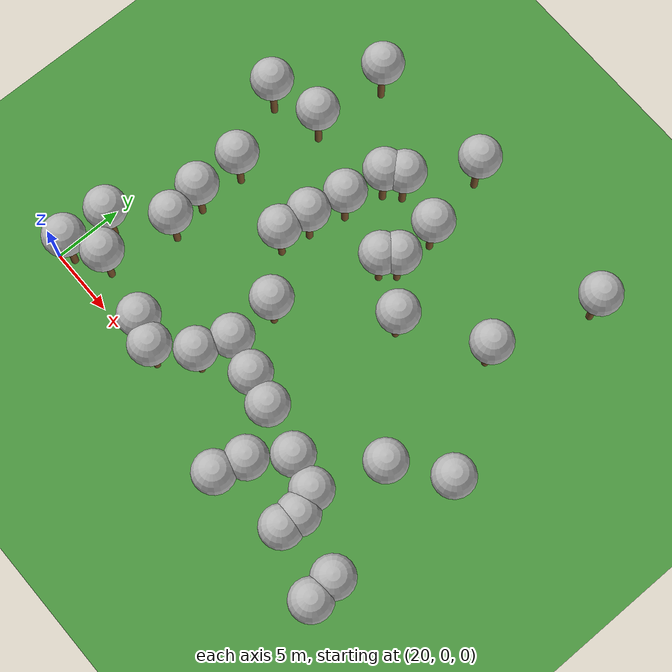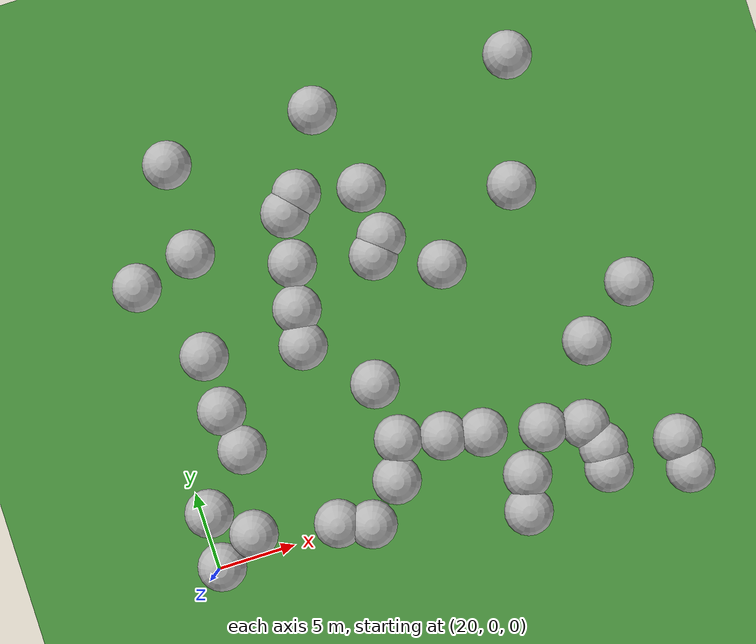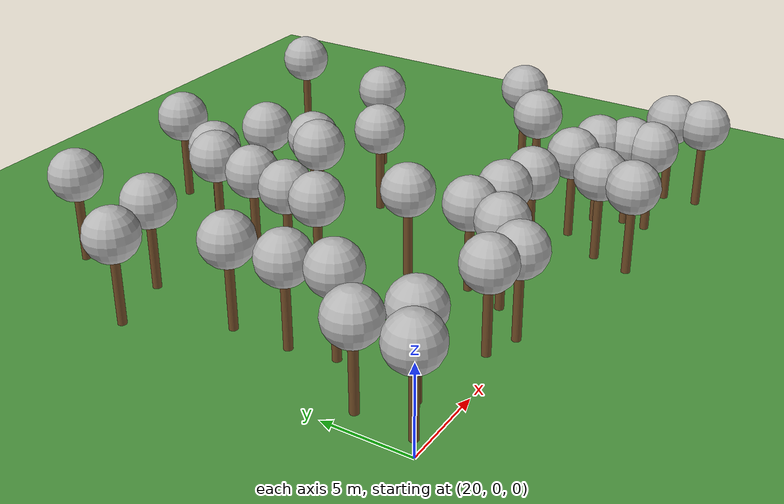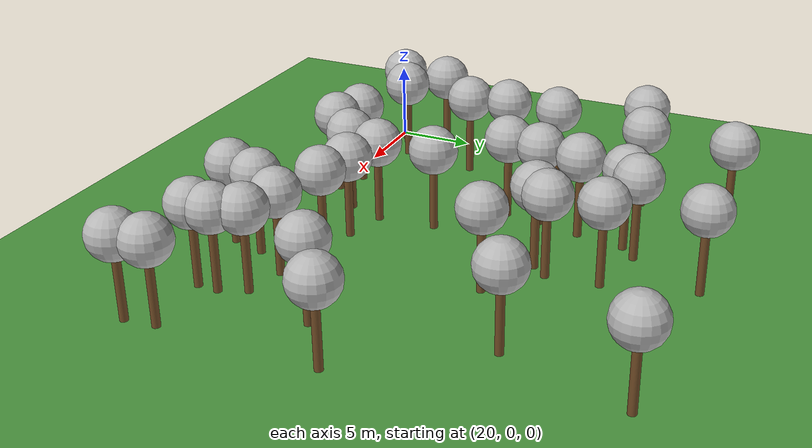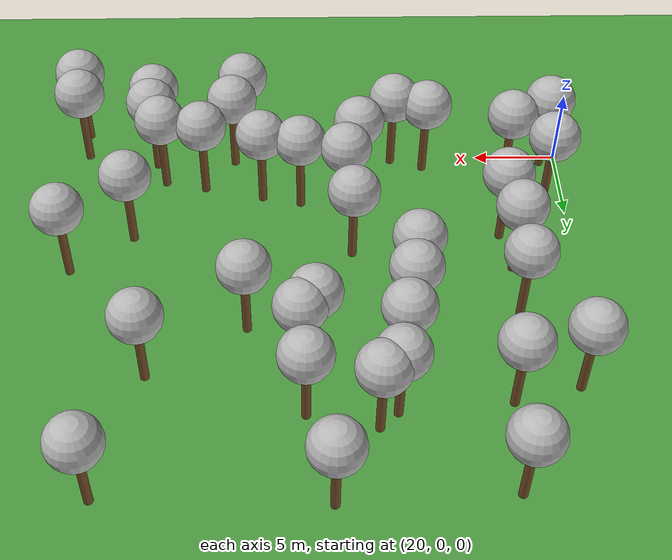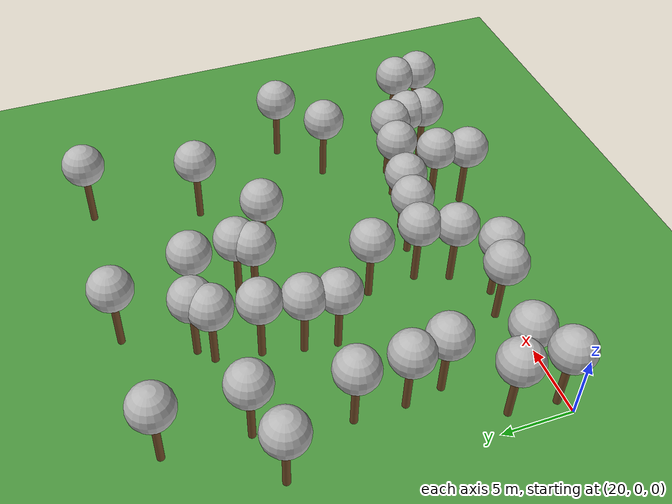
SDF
<sdf version="1.5">
 <world name="default">
  <model name="tree_simple499">
   <static>1</static>
   <link name="link">
    <pose>0 0 0.1 0 -0 0</pose>
    <collision name="collision_trunk">
     <pose>0 0 2 0 -0 0</pose>
     <geometry><cylinder><radius>0.25</radius><length>4</length></cylinder></geometry>
    </collision>
    <collision name="collision_treetop">
     <pose>0 0 5.2 0 -0 0</pose>
     <geometry><sphere><radius>1.5</radius></sphere></geometry>
    </collision>
    <visual name="trunk">
     <pose>0 0 2 0 -0 0</pose>
     <geometry><cylinder><radius>0.25</radius><length>4</length></cylinder></geometry>
     <material>
      <script>
       <uri>model://tree_simple/scripts</uri>
       <uri>model://tree_simple/materials/textures</uri>
       <name>TreeSimple/Trunk</name>
      </script>
     </material>
    </visual>
    <visual name="treetop">
     <pose>0 0 5.2 0 -0 0</pose>
     <geometry><sphere><radius>1.5</radius></sphere></geometry>
     <material>
      <script>
       <uri>model://tree_simple/scripts</uri>
       <uri>model://tree_simple/materials/textures</uri>
       <name>TreeSimple/Treetop</name>
      </script>
     </material>
    </visual>
   </link>
   <pose>49.5772894431 -0.301033806291 0 0 -0 0</pose>
  </model>
  <model name="tree_simple490">
   <static>1</static>
   <link name="link">
    <pose>0 0 0.1 0 -0 0</pose>
    <collision name="collision_trunk">
     <pose>0 0 2 0 -0 0</pose>
     <geometry><cylinder><radius>0.25</radius><length>4</length></cylinder></geometry>
    </collision>
    <collision name="collision_treetop">
     <pose>0 0 5.2 0 -0 0</pose>
     <geometry><sphere><radius>1.5</radius></sphere></geometry>
    </collision>
    <visual name="trunk">
     <pose>0 0 2 0 -0 0</pose>
     <geometry><cylinder><radius>0.25</radius><length>4</length></cylinder></geometry>
     <material>
      <script>
       <uri>model://tree_simple/scripts</uri>
       <uri>model://tree_simple/materials/textures</uri>
       <name>TreeSimple/Trunk</name>
      </script>
     </material>
    </visual>
    <visual name="treetop">
     <pose>0 0 5.2 0 -0 0</pose>
     <geometry><sphere><radius>1.5</radius></sphere></geometry>
     <material>
      <script>
       <uri>model://tree_simple/scripts</uri>
       <uri>model://tree_simple/materials/textures</uri>
       <name>TreeSimple/Treetop</name>
      </script>
     </material>
    </visual>
   </link>
   <pose>28.486302093 0.994684244644 0 0 -0 0</pose>
  </model>
  <model name="tree_simple487">
   <static>1</static>
   <link name="link">
    <pose>0 0 0.1 0 -0 0</pose>
    <collision name="collision_trunk">
     <pose>0 0 2 0 -0 0</pose>
     <geometry><cylinder><radius>0.25</radius><length>4</length></cylinder></geometry>
    </collision>
    <collision name="collision_treetop">
     <pose>0 0 5.2 0 -0 0</pose>
     <geometry><sphere><radius>1.5</radius></sphere></geometry>
    </collision>
    <visual name="trunk">
     <pose>0 0 2 0 -0 0</pose>
     <geometry><cylinder><radius>0.25</radius><length>4</length></cylinder></geometry>
     <material>
      <script>
       <uri>model://tree_simple/scripts</uri>
       <uri>model://tree_simple/materials/textures</uri>
       <name>TreeSimple/Trunk</name>
      </script>
     </material>
    </visual>
    <visual name="treetop">
     <pose>0 0 5.2 0 -0 0</pose>
     <geometry><sphere><radius>1.5</radius></sphere></geometry>
     <material>
      <script>
       <uri>model://tree_simple/scripts</uri>
       <uri>model://tree_simple/materials/textures</uri>
       <name>TreeSimple/Treetop</name>
      </script>
     </material>
    </visual>
   </link>
   <pose>33.1280168764 8.35331864597 0 0 -0 0</pose>
  </model>
  <model name="tree_simple485">
   <static>1</static>
   <link name="link">
    <pose>0 0 0.1 0 -0 0</pose>
    <collision name="collision_trunk">
     <pose>0 0 2 0 -0 0</pose>
     <geometry><cylinder><radius>0.25</radius><length>4</length></cylinder></geometry>
    </collision>
    <collision name="collision_treetop">
     <pose>0 0 5.2 0 -0 0</pose>
     <geometry><sphere><radius>1.5</radius></sphere></geometry>
    </collision>
    <visual name="trunk">
     <pose>0 0 2 0 -0 0</pose>
     <geometry><cylinder><radius>0.25</radius><length>4</length></cylinder></geometry>
     <material>
      <script>
       <uri>model://tree_simple/scripts</uri>
       <uri>model://tree_simple/materials/textures</uri>
       <name>TreeSimple/Trunk</name>
      </script>
     </material>
    </visual>
    <visual name="treetop">
     <pose>0 0 5.2 0 -0 0</pose>
     <geometry><sphere><radius>1.5</radius></sphere></geometry>
     <material>
      <script>
       <uri>model://tree_simple/scripts</uri>
       <uri>model://tree_simple/materials/textures</uri>
       <name>TreeSimple/Treetop</name>
      </script>
     </material>
    </visual>
   </link>
   <pose>38.4673421664 3.60529435805 0 0 -0 0</pose>
  </model>
  <model name="tree_simple431">
   <static>1</static>
   <link name="link">
    <pose>0 0 0.1 0 -0 0</pose>
    <collision name="collision_trunk">
     <pose>0 0 2 0 -0 0</pose>
     <geometry><cylinder><radius>0.25</radius><length>4</length></cylinder></geometry>
    </collision>
    <collision name="collision_treetop">
     <pose>0 0 5.2 0 -0 0</pose>
     <geometry><sphere><radius>1.5</radius></sphere></geometry>
    </collision>
    <visual name="trunk">
     <pose>0 0 2 0 -0 0</pose>
     <geometry><cylinder><radius>0.25</radius><length>4</length></cylinder></geometry>
     <material>
      <script>
       <uri>model://tree_simple/scripts</uri>
       <uri>model://tree_simple/materials/textures</uri>
       <name>TreeSimple/Trunk</name>
      </script>
     </material>
    </visual>
    <visual name="treetop">
     <pose>0 0 5.2 0 -0 0</pose>
     <geometry><sphere><radius>1.5</radius></sphere></geometry>
     <material>
      <script>
       <uri>model://tree_simple/scripts</uri>
       <uri>model://tree_simple/materials/textures</uri>
       <name>TreeSimple/Treetop</name>
      </script>
     </material>
    </visual>
   </link>
   <pose>21.2091972338 3.93897030512 0 0 -0 0</pose>
  </model>
  <model name="tree_simple387">
   <static>1</static>
   <link name="link">
    <pose>0 0 0.1 0 -0 0</pose>
    <collision name="collision_trunk">
     <pose>0 0 2 0 -0 0</pose>
     <geometry><cylinder><radius>0.25</radius><length>4</length></cylinder></geometry>
    </collision>
    <collision name="collision_treetop">
     <pose>0 0 5.2 0 -0 0</pose>
     <geometry><sphere><radius>1.5</radius></sphere></geometry>
    </collision>
    <visual name="trunk">
     <pose>0 0 2 0 -0 0</pose>
     <geometry><cylinder><radius>0.25</radius><length>4</length></cylinder></geometry>
     <material>
      <script>
       <uri>model://tree_simple/scripts</uri>
       <uri>model://tree_simple/materials/textures</uri>
       <name>TreeSimple/Trunk</name>
      </script>
     </material>
    </visual>
    <visual name="treetop">
     <pose>0 0 5.2 0 -0 0</pose>
     <geometry><sphere><radius>1.5</radius></sphere></geometry>
     <material>
      <script>
       <uri>model://tree_simple/scripts</uri>
       <uri>model://tree_simple/materials/textures</uri>
       <name>TreeSimple/Treetop</name>
      </script>
     </material>
    </visual>
   </link>
   <pose>25.1584680938 24.780687948 0 0 -0 0</pose>
  </model>
  <model name="tree_simple378">
   <static>1</static>
   <link name="link">
    <pose>0 0 0.1 0 -0 0</pose>
    <collision name="collision_trunk">
     <pose>0 0 2 0 -0 0</pose>
     <geometry><cylinder><radius>0.25</radius><length>4</length></cylinder></geometry>
    </collision>
    <collision name="collision_treetop">
     <pose>0 0 5.2 0 -0 0</pose>
     <geometry><sphere><radius>1.5</radius></sphere></geometry>
    </collision>
    <visual name="trunk">
     <pose>0 0 2 0 -0 0</pose>
     <geometry><cylinder><radius>0.25</radius><length>4</length></cylinder></geometry>
     <material>
      <script>
       <uri>model://tree_simple/scripts</uri>
       <uri>model://tree_simple/materials/textures</uri>
       <name>TreeSimple/Trunk</name>
      </script>
     </material>
    </visual>
    <visual name="treetop">
     <pose>0 0 5.2 0 -0 0</pose>
     <geometry><sphere><radius>1.5</radius></sphere></geometry>
     <material>
      <script>
       <uri>model://tree_simple/scripts</uri>
       <uri>model://tree_simple/materials/textures</uri>
       <name>TreeSimple/Treetop</name>
      </script>
     </material>
    </visual>
   </link>
   <pose>45.079812121 -0.754391736344 0 0 -0 0</pose>
  </model>
  <model name="tree_simple363">
   <static>1</static>
   <link name="link">
    <pose>0 0 0.1 0 -0 0</pose>
    <collision name="collision_trunk">
     <pose>0 0 2 0 -0 0</pose>
     <geometry><cylinder><radius>0.25</radius><length>4</length></cylinder></geometry>
    </collision>
    <collision name="collision_treetop">
     <pose>0 0 5.2 0 -0 0</pose>
     <geometry><sphere><radius>1.5</radius></sphere></geometry>
    </collision>
    <visual name="trunk">
     <pose>0 0 2 0 -0 0</pose>
     <geometry><cylinder><radius>0.25</radius><length>4</length></cylinder></geometry>
     <material>
      <script>
       <uri>model://tree_simple/scripts</uri>
       <uri>model://tree_simple/materials/textures</uri>
       <name>TreeSimple/Trunk</name>
      </script>
     </material>
    </visual>
    <visual name="treetop">
     <pose>0 0 5.2 0 -0 0</pose>
     <geometry><sphere><radius>1.5</radius></sphere></geometry>
     <material>
      <script>
       <uri>model://tree_simple/scripts</uri>
       <uri>model://tree_simple/materials/textures</uri>
       <name>TreeSimple/Treetop</name>
      </script>
     </material>
    </visual>
   </link>
   <pose>45.144398785 0.58220424318 0 0 -0 0</pose>
  </model>
  <model name="tree_simple354">
   <static>1</static>
   <link name="link">
    <pose>0 0 0.1 0 -0 0</pose>
    <collision name="collision_trunk">
     <pose>0 0 2 0 -0 0</pose>
     <geometry><cylinder><radius>0.25</radius><length>4</length></cylinder></geometry>
    </collision>
    <collision name="collision_treetop">
     <pose>0 0 5.2 0 -0 0</pose>
     <geometry><sphere><radius>1.5</radius></sphere></geometry>
    </collision>
    <visual name="trunk">
     <pose>0 0 2 0 -0 0</pose>
     <geometry><cylinder><radius>0.25</radius><length>4</length></cylinder></geometry>
     <material>
      <script>
       <uri>model://tree_simple/scripts</uri>
       <uri>model://tree_simple/materials/textures</uri>
       <name>TreeSimple/Trunk</name>
      </script>
     </material>
    </visual>
    <visual name="treetop">
     <pose>0 0 5.2 0 -0 0</pose>
     <geometry><sphere><radius>1.5</radius></sphere></geometry>
     <material>
      <script>
       <uri>model://tree_simple/scripts</uri>
       <uri>model://tree_simple/materials/textures</uri>
       <name>TreeSimple/Treetop</name>
      </script>
     </material>
    </visual>
   </link>
   <pose>32.6407591413 2.42607799047 0 0 -0 0</pose>
  </model>
  <model name="tree_simple335">
   <static>1</static>
   <link name="link">
    <pose>0 0 0.1 0 -0 0</pose>
    <collision name="collision_trunk">
     <pose>0 0 2 0 -0 0</pose>
     <geometry><cylinder><radius>0.25</radius><length>4</length></cylinder></geometry>
    </collision>
    <collision name="collision_treetop">
     <pose>0 0 5.2 0 -0 0</pose>
     <geometry><sphere><radius>1.5</radius></sphere></geometry>
    </collision>
    <visual name="trunk">
     <pose>0 0 2 0 -0 0</pose>
     <geometry><cylinder><radius>0.25</radius><length>4</length></cylinder></geometry>
     <material>
      <script>
       <uri>model://tree_simple/scripts</uri>
       <uri>model://tree_simple/materials/textures</uri>
       <name>TreeSimple/Trunk</name>
      </script>
     </material>
    </visual>
    <visual name="treetop">
     <pose>0 0 5.2 0 -0 0</pose>
     <geometry><sphere><radius>1.5</radius></sphere></geometry>
     <material>
      <script>
       <uri>model://tree_simple/scripts</uri>
       <uri>model://tree_simple/materials/textures</uri>
       <name>TreeSimple/Treetop</name>
      </script>
     </material>
    </visual>
   </link>
   <pose>34.5368026381 25.2759033923 0 0 -0 0</pose>
  </model>
  <model name="tree_simple315">
   <static>1</static>
   <link name="link">
    <pose>0 0 0.1 0 -0 0</pose>
    <collision name="collision_trunk">
     <pose>0 0 2 0 -0 0</pose>
     <geometry><cylinder><radius>0.25</radius><length>4</length></cylinder></geometry>
    </collision>
    <collision name="collision_treetop">
     <pose>0 0 5.2 0 -0 0</pose>
     <geometry><sphere><radius>1.5</radius></sphere></geometry>
    </collision>
    <visual name="trunk">
     <pose>0 0 2 0 -0 0</pose>
     <geometry><cylinder><radius>0.25</radius><length>4</length></cylinder></geometry>
     <material>
      <script>
       <uri>model://tree_simple/scripts</uri>
       <uri>model://tree_simple/materials/textures</uri>
       <name>TreeSimple/Trunk</name>
      </script>
     </material>
    </visual>
    <visual name="treetop">
     <pose>0 0 5.2 0 -0 0</pose>
     <geometry><sphere><radius>1.5</radius></sphere></geometry>
     <material>
      <script>
       <uri>model://tree_simple/scripts</uri>
       <uri>model://tree_simple/materials/textures</uri>
       <name>TreeSimple/Treetop</name>
      </script>
     </material>
    </visual>
   </link>
   <pose>20.9855205965 0.626463942169 0 0 -0 0</pose>
  </model>
  <model name="tree_simple297">
   <static>1</static>
   <link name="link">
    <pose>0 0 0.1 0 -0 0</pose>
    <collision name="collision_trunk">
     <pose>0 0 2 0 -0 0</pose>
     <geometry><cylinder><radius>0.25</radius><length>4</length></cylinder></geometry>
    </collision>
    <collision name="collision_treetop">
     <pose>0 0 5.2 0 -0 0</pose>
     <geometry><sphere><radius>1.5</radius></sphere></geometry>
    </collision>
    <visual name="trunk">
     <pose>0 0 2 0 -0 0</pose>
     <geometry><cylinder><radius>0.25</radius><length>4</length></cylinder></geometry>
     <material>
      <script>
       <uri>model://tree_simple/scripts</uri>
       <uri>model://tree_simple/materials/textures</uri>
       <name>TreeSimple/Trunk</name>
      </script>
     </material>
    </visual>
    <visual name="treetop">
     <pose>0 0 5.2 0 -0 0</pose>
     <geometry><sphere><radius>1.5</radius></sphere></geometry>
     <material>
      <script>
       <uri>model://tree_simple/scripts</uri>
       <uri>model://tree_simple/materials/textures</uri>
       <name>TreeSimple/Treetop</name>
      </script>
     </material>
    </visual>
   </link>
   <pose>30.5775161842 16.8175844191 0 0 -0 0</pose>
  </model>
  <model name="tree_simple296">
   <static>1</static>
   <link name="link">
    <pose>0 0 0.1 0 -0 0</pose>
    <collision name="collision_trunk">
     <pose>0 0 2 0 -0 0</pose>
     <geometry><cylinder><radius>0.25</radius><length>4</length></cylinder></geometry>
    </collision>
    <collision name="collision_treetop">
     <pose>0 0 5.2 0 -0 0</pose>
     <geometry><sphere><radius>1.5</radius></sphere></geometry>
    </collision>
    <visual name="trunk">
     <pose>0 0 2 0 -0 0</pose>
     <geometry><cylinder><radius>0.25</radius><length>4</length></cylinder></geometry>
     <material>
      <script>
       <uri>model://tree_simple/scripts</uri>
       <uri>model://tree_simple/materials/textures</uri>
       <name>TreeSimple/Trunk</name>
      </script>
     </material>
    </visual>
    <visual name="treetop">
     <pose>0 0 5.2 0 -0 0</pose>
     <geometry><sphere><radius>1.5</radius></sphere></geometry>
     <material>
      <script>
       <uri>model://tree_simple/scripts</uri>
       <uri>model://tree_simple/materials/textures</uri>
       <name>TreeSimple/Treetop</name>
      </script>
     </material>
    </visual>
   </link>
   <pose>44.6267245304 17.3019041373 0 0 -0 0</pose>
  </model>
  <model name="tree_simple293">
   <static>1</static>
   <link name="link">
    <pose>0 0 0.1 0 -0 0</pose>
    <collision name="collision_trunk">
     <pose>0 0 2 0 -0 0</pose>
     <geometry><cylinder><radius>0.25</radius><length>4</length></cylinder></geometry>
    </collision>
    <collision name="collision_treetop">
     <pose>0 0 5.2 0 -0 0</pose>
     <geometry><sphere><radius>1.5</radius></sphere></geometry>
    </collision>
    <visual name="trunk">
     <pose>0 0 2 0 -0 0</pose>
     <geometry><cylinder><radius>0.25</radius><length>4</length></cylinder></geometry>
     <material>
      <script>
       <uri>model://tree_simple/scripts</uri>
       <uri>model://tree_simple/materials/textures</uri>
       <name>TreeSimple/Trunk</name>
      </script>
     </material>
    </visual>
    <visual name="treetop">
     <pose>0 0 5.2 0 -0 0</pose>
     <geometry><sphere><radius>1.5</radius></sphere></geometry>
     <material>
      <script>
       <uri>model://tree_simple/scripts</uri>
       <uri>model://tree_simple/materials/textures</uri>
       <name>TreeSimple/Treetop</name>
      </script>
     </material>
    </visual>
   </link>
   <pose>23.4063524119 1.93979754522 0 0 -0 0</pose>
  </model>
  <model name="tree_simple283">
   <static>1</static>
   <link name="link">
    <pose>0 0 0.1 0 -0 0</pose>
    <collision name="collision_trunk">
     <pose>0 0 2 0 -0 0</pose>
     <geometry><cylinder><radius>0.25</radius><length>4</length></cylinder></geometry>
    </collision>
    <collision name="collision_treetop">
     <pose>0 0 5.2 0 -0 0</pose>
     <geometry><sphere><radius>1.5</radius></sphere></geometry>
    </collision>
    <visual name="trunk">
     <pose>0 0 2 0 -0 0</pose>
     <geometry><cylinder><radius>0.25</radius><length>4</length></cylinder></geometry>
     <material>
      <script>
       <uri>model://tree_simple/scripts</uri>
       <uri>model://tree_simple/materials/textures</uri>
       <name>TreeSimple/Trunk</name>
      </script>
     </material>
    </visual>
    <visual name="treetop">
     <pose>0 0 5.2 0 -0 0</pose>
     <geometry><sphere><radius>1.5</radius></sphere></geometry>
     <material>
      <script>
       <uri>model://tree_simple/scripts</uri>
       <uri>model://tree_simple/materials/textures</uri>
       <name>TreeSimple/Treetop</name>
      </script>
     </material>
    </visual>
   </link>
   <pose>39.1815186035 14.0237047255 0 0 -0 0</pose>
  </model>
  <model name="tree_simple277">
   <static>1</static>
   <link name="link">
    <pose>0 0 0.1 0 -0 0</pose>
    <collision name="collision_trunk">
     <pose>0 0 2 0 -0 0</pose>
     <geometry><cylinder><radius>0.25</radius><length>4</length></cylinder></geometry>
    </collision>
    <collision name="collision_treetop">
     <pose>0 0 5.2 0 -0 0</pose>
     <geometry><sphere><radius>1.5</radius></sphere></geometry>
    </collision>
    <visual name="trunk">
     <pose>0 0 2 0 -0 0</pose>
     <geometry><cylinder><radius>0.25</radius><length>4</length></cylinder></geometry>
     <material>
      <script>
       <uri>model://tree_simple/scripts</uri>
       <uri>model://tree_simple/materials/textures</uri>
       <name>TreeSimple/Trunk</name>
      </script>
     </material>
    </visual>
    <visual name="treetop">
     <pose>0 0 5.2 0 -0 0</pose>
     <geometry><sphere><radius>1.5</radius></sphere></geometry>
     <material>
      <script>
       <uri>model://tree_simple/scripts</uri>
       <uri>model://tree_simple/materials/textures</uri>
       <name>TreeSimple/Treetop</name>
      </script>
     </material>
    </visual>
   </link>
   <pose>29.6986775877 11.8803123921 0 0 -0 0</pose>
  </model>
  <model name="tree_simple274">
   <static>1</static>
   <link name="link">
    <pose>0 0 0.1 0 -0 0</pose>
    <collision name="collision_trunk">
     <pose>0 0 2 0 -0 0</pose>
     <geometry><cylinder><radius>0.25</radius><length>4</length></cylinder></geometry>
    </collision>
    <collision name="collision_treetop">
     <pose>0 0 5.2 0 -0 0</pose>
     <geometry><sphere><radius>1.5</radius></sphere></geometry>
    </collision>
    <visual name="trunk">
     <pose>0 0 2 0 -0 0</pose>
     <geometry><cylinder><radius>0.25</radius><length>4</length></cylinder></geometry>
     <material>
      <script>
       <uri>model://tree_simple/scripts</uri>
       <uri>model://tree_simple/materials/textures</uri>
       <name>TreeSimple/Trunk</name>
      </script>
     </material>
    </visual>
    <visual name="treetop">
     <pose>0 0 5.2 0 -0 0</pose>
     <geometry><sphere><radius>1.5</radius></sphere></geometry>
     <material>
      <script>
       <uri>model://tree_simple/scripts</uri>
       <uri>model://tree_simple/materials/textures</uri>
       <name>TreeSimple/Treetop</name>
      </script>
     </material>
    </visual>
   </link>
   <pose>36.1444858675 4.12221392714 0 0 -0 0</pose>
  </model>
  <model name="tree_simple270">
   <static>1</static>
   <link name="link">
    <pose>0 0 0.1 0 -0 0</pose>
    <collision name="collision_trunk">
     <pose>0 0 2 0 -0 0</pose>
     <geometry><cylinder><radius>0.25</radius><length>4</length></cylinder></geometry>
    </collision>
    <collision name="collision_treetop">
     <pose>0 0 5.2 0 -0 0</pose>
     <geometry><sphere><radius>1.5</radius></sphere></geometry>
    </collision>
    <visual name="trunk">
     <pose>0 0 2 0 -0 0</pose>
     <geometry><cylinder><radius>0.25</radius><length>4</length></cylinder></geometry>
     <material>
      <script>
       <uri>model://tree_simple/scripts</uri>
       <uri>model://tree_simple/materials/textures</uri>
       <name>TreeSimple/Trunk</name>
      </script>
     </material>
    </visual>
    <visual name="treetop">
     <pose>0 0 5.2 0 -0 0</pose>
     <geometry><sphere><radius>1.5</radius></sphere></geometry>
     <material>
      <script>
       <uri>model://tree_simple/scripts</uri>
       <uri>model://tree_simple/materials/textures</uri>
       <name>TreeSimple/Treetop</name>
      </script>
     </material>
    </visual>
   </link>
   <pose>36.1848743211 16.7262379366 0 0 -0 0</pose>
  </model>
  <model name="tree_simple266">
   <static>1</static>
   <link name="link">
    <pose>0 0 0.1 0 -0 0</pose>
    <collision name="collision_trunk">
     <pose>0 0 2 0 -0 0</pose>
     <geometry><cylinder><radius>0.25</radius><length>4</length></cylinder></geometry>
    </collision>
    <collision name="collision_treetop">
     <pose>0 0 5.2 0 -0 0</pose>
     <geometry><sphere><radius>1.5</radius></sphere></geometry>
    </collision>
    <visual name="trunk">
     <pose>0 0 2 0 -0 0</pose>
     <geometry><cylinder><radius>0.25</radius><length>4</length></cylinder></geometry>
     <material>
      <script>
       <uri>model://tree_simple/scripts</uri>
       <uri>model://tree_simple/materials/textures</uri>
       <name>TreeSimple/Trunk</name>
      </script>
     </material>
    </visual>
    <visual name="treetop">
     <pose>0 0 5.2 0 -0 0</pose>
     <geometry><sphere><radius>1.5</radius></sphere></geometry>
     <material>
      <script>
       <uri>model://tree_simple/scripts</uri>
       <uri>model://tree_simple/materials/textures</uri>
       <name>TreeSimple/Treetop</name>
      </script>
     </material>
    </visual>
   </link>
   <pose>24.8758321483 19.2237149963 0 0 -0 0</pose>
  </model>
  <model name="tree_simple242">
   <static>1</static>
   <link name="link">
    <pose>0 0 0.1 0 -0 0</pose>
    <collision name="collision_trunk">
     <pose>0 0 2 0 -0 0</pose>
     <geometry><cylinder><radius>0.25</radius><length>4</length></cylinder></geometry>
    </collision>
    <collision name="collision_treetop">
     <pose>0 0 5.2 0 -0 0</pose>
     <geometry><sphere><radius>1.5</radius></sphere></geometry>
    </collision>
    <visual name="trunk">
     <pose>0 0 2 0 -0 0</pose>
     <geometry><cylinder><radius>0.25</radius><length>4</length></cylinder></geometry>
     <material>
      <script>
       <uri>model://tree_simple/scripts</uri>
       <uri>model://tree_simple/materials/textures</uri>
       <name>TreeSimple/Trunk</name>
      </script>
     </material>
    </visual>
    <visual name="treetop">
     <pose>0 0 5.2 0 -0 0</pose>
     <geometry><sphere><radius>1.5</radius></sphere></geometry>
     <material>
      <script>
       <uri>model://tree_simple/scripts</uri>
       <uri>model://tree_simple/materials/textures</uri>
       <name>TreeSimple/Treetop</name>
      </script>
     </material>
    </visual>
   </link>
   <pose>23.8093795921 9.61974989159 0 0 -0 0</pose>
  </model>
  <model name="tree_simple237">
   <static>1</static>
   <link name="link">
    <pose>0 0 0.1 0 -0 0</pose>
    <collision name="collision_trunk">
     <pose>0 0 2 0 -0 0</pose>
     <geometry><cylinder><radius>0.25</radius><length>4</length></cylinder></geometry>
    </collision>
    <collision name="collision_treetop">
     <pose>0 0 5.2 0 -0 0</pose>
     <geometry><sphere><radius>1.5</radius></sphere></geometry>
    </collision>
    <visual name="trunk">
     <pose>0 0 2 0 -0 0</pose>
     <geometry><cylinder><radius>0.25</radius><length>4</length></cylinder></geometry>
     <material>
      <script>
       <uri>model://tree_simple/scripts</uri>
       <uri>model://tree_simple/materials/textures</uri>
       <name>TreeSimple/Trunk</name>
      </script>
     </material>
    </visual>
    <visual name="treetop">
     <pose>0 0 5.2 0 -0 0</pose>
     <geometry><sphere><radius>1.5</radius></sphere></geometry>
     <material>
      <script>
       <uri>model://tree_simple/scripts</uri>
       <uri>model://tree_simple/materials/textures</uri>
       <name>TreeSimple/Treetop</name>
      </script>
     </material>
    </visual>
   </link>
   <pose>23.796461239 13.0760295483 0 0 -0 0</pose>
  </model>
  <model name="tree_simple219">
   <static>1</static>
   <link name="link">
    <pose>0 0 0.1 0 -0 0</pose>
    <collision name="collision_trunk">
     <pose>0 0 2 0 -0 0</pose>
     <geometry><cylinder><radius>0.25</radius><length>4</length></cylinder></geometry>
    </collision>
    <collision name="collision_treetop">
     <pose>0 0 5.2 0 -0 0</pose>
     <geometry><sphere><radius>1.5</radius></sphere></geometry>
    </collision>
    <visual name="trunk">
     <pose>0 0 2 0 -0 0</pose>
     <geometry><cylinder><radius>0.25</radius><length>4</length></cylinder></geometry>
     <material>
      <script>
       <uri>model://tree_simple/scripts</uri>
       <uri>model://tree_simple/materials/textures</uri>
       <name>TreeSimple/Trunk</name>
      </script>
     </material>
    </visual>
    <visual name="treetop">
     <pose>0 0 5.2 0 -0 0</pose>
     <geometry><sphere><radius>1.5</radius></sphere></geometry>
     <material>
      <script>
       <uri>model://tree_simple/scripts</uri>
       <uri>model://tree_simple/materials/textures</uri>
       <name>TreeSimple/Treetop</name>
      </script>
     </material>
    </visual>
   </link>
   <pose>32.089947678 20.7584358719 0 0 -0 0</pose>
  </model>
  <model name="tree_simple217">
   <static>1</static>
   <link name="link">
    <pose>0 0 0.1 0 -0 0</pose>
    <collision name="collision_trunk">
     <pose>0 0 2 0 -0 0</pose>
     <geometry><cylinder><radius>0.25</radius><length>4</length></cylinder></geometry>
    </collision>
    <collision name="collision_treetop">
     <pose>0 0 5.2 0 -0 0</pose>
     <geometry><sphere><radius>1.5</radius></sphere></geometry>
    </collision>
    <visual name="trunk">
     <pose>0 0 2 0 -0 0</pose>
     <geometry><cylinder><radius>0.25</radius><length>4</length></cylinder></geometry>
     <material>
      <script>
       <uri>model://tree_simple/scripts</uri>
       <uri>model://tree_simple/materials/textures</uri>
       <name>TreeSimple/Trunk</name>
      </script>
     </material>
    </visual>
    <visual name="treetop">
     <pose>0 0 5.2 0 -0 0</pose>
     <geometry><sphere><radius>1.5</radius></sphere></geometry>
     <material>
      <script>
       <uri>model://tree_simple/scripts</uri>
       <uri>model://tree_simple/materials/textures</uri>
       <name>TreeSimple/Treetop</name>
      </script>
     </material>
    </visual>
   </link>
   <pose>49.7701486167 -2.25839681325 0 0 -0 0</pose>
  </model>
  <model name="tree_simple216">
   <static>1</static>
   <link name="link">
    <pose>0 0 0.1 0 -0 0</pose>
    <collision name="collision_trunk">
     <pose>0 0 2 0 -0 0</pose>
     <geometry><cylinder><radius>0.25</radius><length>4</length></cylinder></geometry>
    </collision>
    <collision name="collision_treetop">
     <pose>0 0 5.2 0 -0 0</pose>
     <geometry><sphere><radius>1.5</radius></sphere></geometry>
    </collision>
    <visual name="trunk">
     <pose>0 0 2 0 -0 0</pose>
     <geometry><cylinder><radius>0.25</radius><length>4</length></cylinder></geometry>
     <material>
      <script>
       <uri>model://tree_simple/scripts</uri>
       <uri>model://tree_simple/materials/textures</uri>
       <name>TreeSimple/Trunk</name>
      </script>
     </material>
    </visual>
    <visual name="treetop">
     <pose>0 0 5.2 0 -0 0</pose>
     <geometry><sphere><radius>1.5</radius></sphere></geometry>
     <material>
      <script>
       <uri>model://tree_simple/scripts</uri>
       <uri>model://tree_simple/materials/textures</uri>
       <name>TreeSimple/Treetop</name>
      </script>
     </material>
    </visual>
   </link>
   <pose>46.7848412988 24.905742282 0 0 -0 0</pose>
  </model>
  <model name="tree_simple188">
   <static>1</static>
   <link name="link">
    <pose>0 0 0.1 0 -0 0</pose>
    <collision name="collision_trunk">
     <pose>0 0 2 0 -0 0</pose>
     <geometry><cylinder><radius>0.25</radius><length>4</length></cylinder></geometry>
    </collision>
    <collision name="collision_treetop">
     <pose>0 0 5.2 0 -0 0</pose>
     <geometry><sphere><radius>1.5</radius></sphere></geometry>
    </collision>
    <visual name="trunk">
     <pose>0 0 2 0 -0 0</pose>
     <geometry><cylinder><radius>0.25</radius><length>4</length></cylinder></geometry>
     <material>
      <script>
       <uri>model://tree_simple/scripts</uri>
       <uri>model://tree_simple/materials/textures</uri>
       <name>TreeSimple/Trunk</name>
      </script>
     </material>
    </visual>
    <visual name="treetop">
     <pose>0 0 5.2 0 -0 0</pose>
     <geometry><sphere><radius>1.5</radius></sphere></geometry>
     <material>
      <script>
       <uri>model://tree_simple/scripts</uri>
       <uri>model://tree_simple/materials/textures</uri>
       <name>TreeSimple/Treetop</name>
      </script>
     </material>
    </visual>
   </link>
   <pose>31.0766060016 19.8231593676 0 0 -0 0</pose>
  </model>
  <model name="tree_simple151">
   <static>1</static>
   <link name="link">
    <pose>0 0 0.1 0 -0 0</pose>
    <collision name="collision_trunk">
     <pose>0 0 2 0 -0 0</pose>
     <geometry><cylinder><radius>0.25</radius><length>4</length></cylinder></geometry>
    </collision>
    <collision name="collision_treetop">
     <pose>0 0 5.2 0 -0 0</pose>
     <geometry><sphere><radius>1.5</radius></sphere></geometry>
    </collision>
    <visual name="trunk">
     <pose>0 0 2 0 -0 0</pose>
     <geometry><cylinder><radius>0.25</radius><length>4</length></cylinder></geometry>
     <material>
      <script>
       <uri>model://tree_simple/scripts</uri>
       <uri>model://tree_simple/materials/textures</uri>
       <name>TreeSimple/Trunk</name>
      </script>
     </material>
    </visual>
    <visual name="treetop">
     <pose>0 0 5.2 0 -0 0</pose>
     <geometry><sphere><radius>1.5</radius></sphere></geometry>
     <material>
      <script>
       <uri>model://tree_simple/scripts</uri>
       <uri>model://tree_simple/materials/textures</uri>
       <name>TreeSimple/Treetop</name>
      </script>
     </material>
    </visual>
   </link>
   <pose>44.4996407391 2.22143393779 0 0 -0 0</pose>
  </model>
  <model name="tree_simple147">
   <static>1</static>
   <link name="link">
    <pose>0 0 0.1 0 -0 0</pose>
    <collision name="collision_trunk">
     <pose>0 0 2 0 -0 0</pose>
     <geometry><cylinder><radius>0.25</radius><length>4</length></cylinder></geometry>
    </collision>
    <collision name="collision_treetop">
     <pose>0 0 5.2 0 -0 0</pose>
     <geometry><sphere><radius>1.5</radius></sphere></geometry>
    </collision>
    <visual name="trunk">
     <pose>0 0 2 0 -0 0</pose>
     <geometry><cylinder><radius>0.25</radius><length>4</length></cylinder></geometry>
     <material>
      <script>
       <uri>model://tree_simple/scripts</uri>
       <uri>model://tree_simple/materials/textures</uri>
       <name>TreeSimple/Trunk</name>
      </script>
     </material>
    </visual>
    <visual name="treetop">
     <pose>0 0 5.2 0 -0 0</pose>
     <geometry><sphere><radius>1.5</radius></sphere></geometry>
     <material>
      <script>
       <uri>model://tree_simple/scripts</uri>
       <uri>model://tree_simple/materials/textures</uri>
       <name>TreeSimple/Treetop</name>
      </script>
     </material>
    </visual>
   </link>
   <pose>35.3937687519 15.7697149942 0 0 -0 0</pose>
  </model>
  <model name="tree_simple125">
   <static>1</static>
   <link name="link">
    <pose>0 0 0.1 0 -0 0</pose>
    <collision name="collision_trunk">
     <pose>0 0 2 0 -0 0</pose>
     <geometry><cylinder><radius>0.25</radius><length>4</length></cylinder></geometry>
    </collision>
    <collision name="collision_treetop">
     <pose>0 0 5.2 0 -0 0</pose>
     <geometry><sphere><radius>1.5</radius></sphere></geometry>
    </collision>
    <visual name="trunk">
     <pose>0 0 2 0 -0 0</pose>
     <geometry><cylinder><radius>0.25</radius><length>4</length></cylinder></geometry>
     <material>
      <script>
       <uri>model://tree_simple/scripts</uri>
       <uri>model://tree_simple/materials/textures</uri>
       <name>TreeSimple/Trunk</name>
      </script>
     </material>
    </visual>
    <visual name="treetop">
     <pose>0 0 5.2 0 -0 0</pose>
     <geometry><sphere><radius>1.5</radius></sphere></geometry>
     <material>
      <script>
       <uri>model://tree_simple/scripts</uri>
       <uri>model://tree_simple/materials/textures</uri>
       <name>TreeSimple/Treetop</name>
      </script>
     </material>
    </visual>
   </link>
   <pose>49.6376718654 9.60982885919 0 0 -0 0</pose>
  </model>
  <model name="tree_simple101">
   <static>1</static>
   <link name="link">
    <pose>0 0 0.1 0 -0 0</pose>
    <collision name="collision_trunk">
     <pose>0 0 2 0 -0 0</pose>
     <geometry><cylinder><radius>0.25</radius><length>4</length></cylinder></geometry>
    </collision>
    <collision name="collision_treetop">
     <pose>0 0 5.2 0 -0 0</pose>
     <geometry><sphere><radius>1.5</radius></sphere></geometry>
    </collision>
    <visual name="trunk">
     <pose>0 0 2 0 -0 0</pose>
     <geometry><cylinder><radius>0.25</radius><length>4</length></cylinder></geometry>
     <material>
      <script>
       <uri>model://tree_simple/scripts</uri>
       <uri>model://tree_simple/materials/textures</uri>
       <name>TreeSimple/Trunk</name>
      </script>
     </material>
    </visual>
    <visual name="treetop">
     <pose>0 0 5.2 0 -0 0</pose>
     <geometry><sphere><radius>1.5</radius></sphere></geometry>
     <material>
      <script>
       <uri>model://tree_simple/scripts</uri>
       <uri>model://tree_simple/materials/textures</uri>
       <name>TreeSimple/Treetop</name>
      </script>
     </material>
    </visual>
   </link>
   <pose>30.4497487196 0.325840967223 0 0 -0 0</pose>
  </model>
  <model name="tree_simple88">
   <static>1</static>
   <link name="link">
    <pose>0 0 0.1 0 -0 0</pose>
    <collision name="collision_trunk">
     <pose>0 0 2 0 -0 0</pose>
     <geometry><cylinder><radius>0.25</radius><length>4</length></cylinder></geometry>
    </collision>
    <collision name="collision_treetop">
     <pose>0 0 5.2 0 -0 0</pose>
     <geometry><sphere><radius>1.5</radius></sphere></geometry>
    </collision>
    <visual name="trunk">
     <pose>0 0 2 0 -0 0</pose>
     <geometry><cylinder><radius>0.25</radius><length>4</length></cylinder></geometry>
     <material>
      <script>
       <uri>model://tree_simple/scripts</uri>
       <uri>model://tree_simple/materials/textures</uri>
       <name>TreeSimple/Trunk</name>
      </script>
     </material>
    </visual>
    <visual name="treetop">
     <pose>0 0 5.2 0 -0 0</pose>
     <geometry><sphere><radius>1.5</radius></sphere></geometry>
     <material>
      <script>
       <uri>model://tree_simple/scripts</uri>
       <uri>model://tree_simple/materials/textures</uri>
       <name>TreeSimple/Treetop</name>
      </script>
     </material>
    </visual>
   </link>
   <pose>30.0100540879 14.1017102657 0 0 -0 0</pose>
  </model>
  <model name="tree_simple82">
   <static>1</static>
   <link name="link">
    <pose>0 0 0.1 0 -0 0</pose>
    <collision name="collision_trunk">
     <pose>0 0 2 0 -0 0</pose>
     <geometry><cylinder><radius>0.25</radius><length>4</length></cylinder></geometry>
    </collision>
    <collision name="collision_treetop">
     <pose>0 0 5.2 0 -0 0</pose>
     <geometry><sphere><radius>1.5</radius></sphere></geometry>
    </collision>
    <visual name="trunk">
     <pose>0 0 2 0 -0 0</pose>
     <geometry><cylinder><radius>0.25</radius><length>4</length></cylinder></geometry>
     <material>
      <script>
       <uri>model://tree_simple/scripts</uri>
       <uri>model://tree_simple/materials/textures</uri>
       <name>TreeSimple/Trunk</name>
      </script>
     </material>
    </visual>
    <visual name="treetop">
     <pose>0 0 5.2 0 -0 0</pose>
     <geometry><sphere><radius>1.5</radius></sphere></geometry>
     <material>
      <script>
       <uri>model://tree_simple/scripts</uri>
       <uri>model://tree_simple/materials/textures</uri>
       <name>TreeSimple/Treetop</name>
      </script>
     </material>
    </visual>
   </link>
   <pose>42.0261591118 2.77520756708 0 0 -0 0</pose>
  </model>
  <model name="tree_simple69">
   <static>1</static>
   <link name="link">
    <pose>0 0 0.1 0 -0 0</pose>
    <collision name="collision_trunk">
     <pose>0 0 2 0 -0 0</pose>
     <geometry><cylinder><radius>0.25</radius><length>4</length></cylinder></geometry>
    </collision>
    <collision name="collision_treetop">
     <pose>0 0 5.2 0 -0 0</pose>
     <geometry><sphere><radius>1.5</radius></sphere></geometry>
    </collision>
    <visual name="trunk">
     <pose>0 0 2 0 -0 0</pose>
     <geometry><cylinder><radius>0.25</radius><length>4</length></cylinder></geometry>
     <material>
      <script>
       <uri>model://tree_simple/scripts</uri>
       <uri>model://tree_simple/materials/textures</uri>
       <name>TreeSimple/Trunk</name>
      </script>
     </material>
    </visual>
    <visual name="treetop">
     <pose>0 0 5.2 0 -0 0</pose>
     <geometry><sphere><radius>1.5</radius></sphere></geometry>
     <material>
      <script>
       <uri>model://tree_simple/scripts</uri>
       <uri>model://tree_simple/materials/textures</uri>
       <name>TreeSimple/Treetop</name>
      </script>
     </material>
    </visual>
   </link>
   <pose>24.2740605354 7.00706746043 0 0 -0 0</pose>
  </model>
  <model name="tree_simple54">
   <static>1</static>
   <link name="link">
    <pose>0 0 0.1 0 -0 0</pose>
    <collision name="collision_trunk">
     <pose>0 0 2 0 -0 0</pose>
     <geometry><cylinder><radius>0.25</radius><length>4</length></cylinder></geometry>
    </collision>
    <collision name="collision_treetop">
     <pose>0 0 5.2 0 -0 0</pose>
     <geometry><sphere><radius>1.5</radius></sphere></geometry>
    </collision>
    <visual name="trunk">
     <pose>0 0 2 0 -0 0</pose>
     <geometry><cylinder><radius>0.25</radius><length>4</length></cylinder></geometry>
     <material>
      <script>
       <uri>model://tree_simple/scripts</uri>
       <uri>model://tree_simple/materials/textures</uri>
       <name>TreeSimple/Trunk</name>
      </script>
     </material>
    </visual>
    <visual name="treetop">
     <pose>0 0 5.2 0 -0 0</pose>
     <geometry><sphere><radius>1.5</radius></sphere></geometry>
     <material>
      <script>
       <uri>model://tree_simple/scripts</uri>
       <uri>model://tree_simple/materials/textures</uri>
       <name>TreeSimple/Treetop</name>
      </script>
     </material>
    </visual>
   </link>
   <pose>40.2707740498 0.36304299765 0 0 -0 0</pose>
  </model>
  <model name="tree_simple46">
   <static>1</static>
   <link name="link">
    <pose>0 0 0.1 0 -0 0</pose>
    <collision name="collision_trunk">
     <pose>0 0 2 0 -0 0</pose>
     <geometry><cylinder><radius>0.25</radius><length>4</length></cylinder></geometry>
    </collision>
    <collision name="collision_treetop">
     <pose>0 0 5.2 0 -0 0</pose>
     <geometry><sphere><radius>1.5</radius></sphere></geometry>
    </collision>
    <visual name="trunk">
     <pose>0 0 2 0 -0 0</pose>
     <geometry><cylinder><radius>0.25</radius><length>4</length></cylinder></geometry>
     <material>
      <script>
       <uri>model://tree_simple/scripts</uri>
       <uri>model://tree_simple/materials/textures</uri>
       <name>TreeSimple/Trunk</name>
      </script>
     </material>
    </visual>
    <visual name="treetop">
     <pose>0 0 5.2 0 -0 0</pose>
     <geometry><sphere><radius>1.5</radius></sphere></geometry>
     <material>
      <script>
       <uri>model://tree_simple/scripts</uri>
       <uri>model://tree_simple/materials/textures</uri>
       <name>TreeSimple/Treetop</name>
      </script>
     </material>
    </visual>
   </link>
   <pose>35.9376574388 19.9099598652 0 0 -0 0</pose>
  </model>
  <model name="tree_simple45">
   <static>1</static>
   <link name="link">
    <pose>0 0 0.1 0 -0 0</pose>
    <collision name="collision_trunk">
     <pose>0 0 2 0 -0 0</pose>
     <geometry><cylinder><radius>0.25</radius><length>4</length></cylinder></geometry>
    </collision>
    <collision name="collision_treetop">
     <pose>0 0 5.2 0 -0 0</pose>
     <geometry><sphere><radius>1.5</radius></sphere></geometry>
    </collision>
    <visual name="trunk">
     <pose>0 0 2 0 -0 0</pose>
     <geometry><cylinder><radius>0.25</radius><length>4</length></cylinder></geometry>
     <material>
      <script>
       <uri>model://tree_simple/scripts</uri>
       <uri>model://tree_simple/materials/textures</uri>
       <name>TreeSimple/Trunk</name>
      </script>
     </material>
    </visual>
    <visual name="treetop">
     <pose>0 0 5.2 0 -0 0</pose>
     <geometry><sphere><radius>1.5</radius></sphere></geometry>
     <material>
      <script>
       <uri>model://tree_simple/scripts</uri>
       <uri>model://tree_simple/materials/textures</uri>
       <name>TreeSimple/Treetop</name>
      </script>
     </material>
    </visual>
   </link>
   <pose>33.4753312088 4.75995445327 0 0 -0 0</pose>
  </model>
  <model name="tree_simple20">
   <static>1</static>
   <link name="link">
    <pose>0 0 0.1 0 -0 0</pose>
    <collision name="collision_trunk">
     <pose>0 0 2 0 -0 0</pose>
     <geometry><cylinder><radius>0.25</radius><length>4</length></cylinder></geometry>
    </collision>
    <collision name="collision_treetop">
     <pose>0 0 5.2 0 -0 0</pose>
     <geometry><sphere><radius>1.5</radius></sphere></geometry>
    </collision>
    <visual name="trunk">
     <pose>0 0 2 0 -0 0</pose>
     <geometry><cylinder><radius>0.25</radius><length>4</length></cylinder></geometry>
     <material>
      <script>
       <uri>model://tree_simple/scripts</uri>
       <uri>model://tree_simple/materials/textures</uri>
       <name>TreeSimple/Trunk</name>
      </script>
     </material>
    </visual>
    <visual name="treetop">
     <pose>0 0 5.2 0 -0 0</pose>
     <geometry><sphere><radius>1.5</radius></sphere></geometry>
     <material>
      <script>
       <uri>model://tree_simple/scripts</uri>
       <uri>model://tree_simple/materials/textures</uri>
       <name>TreeSimple/Treetop</name>
      </script>
     </material>
    </visual>
   </link>
   <pose>21.1901136625 18.261917312 0 0 -0 0</pose>
  </model>
  <model name="tree_simple19">
   <static>1</static>
   <link name="link">
    <pose>0 0 0.1 0 -0 0</pose>
    <collision name="collision_trunk">
     <pose>0 0 2 0 -0 0</pose>
     <geometry><cylinder><radius>0.25</radius><length>4</length></cylinder></geometry>
    </collision>
    <collision name="collision_treetop">
     <pose>0 0 5.2 0 -0 0</pose>
     <geometry><sphere><radius>1.5</radius></sphere></geometry>
    </collision>
    <visual name="trunk">
     <pose>0 0 2 0 -0 0</pose>
     <geometry><cylinder><radius>0.25</radius><length>4</length></cylinder></geometry>
     <material>
      <script>
       <uri>model://tree_simple/scripts</uri>
       <uri>model://tree_simple/materials/textures</uri>
       <name>TreeSimple/Trunk</name>
      </script>
     </material>
    </visual>
    <visual name="treetop">
     <pose>0 0 5.2 0 -0 0</pose>
     <geometry><sphere><radius>1.5</radius></sphere></geometry>
     <material>
      <script>
       <uri>model://tree_simple/scripts</uri>
       <uri>model://tree_simple/materials/textures</uri>
       <name>TreeSimple/Treetop</name>
      </script>
     </material>
    </visual>
   </link>
   <pose>39.6710404754 -1.77882210198 0 0 -0 0</pose>
  </model>
  <model name="tree_simple12">
   <static>1</static>
   <link name="link">
    <pose>0 0 0.1 0 -0 0</pose>
    <collision name="collision_trunk">
     <pose>0 0 2 0 -0 0</pose>
     <geometry><cylinder><radius>0.25</radius><length>4</length></cylinder></geometry>
    </collision>
    <collision name="collision_treetop">
     <pose>0 0 5.2 0 -0 0</pose>
     <geometry><sphere><radius>1.5</radius></sphere></geometry>
    </collision>
    <visual name="trunk">
     <pose>0 0 2 0 -0 0</pose>
     <geometry><cylinder><radius>0.25</radius><length>4</length></cylinder></geometry>
     <material>
      <script>
       <uri>model://tree_simple/scripts</uri>
       <uri>model://tree_simple/materials/textures</uri>
       <name>TreeSimple/Trunk</name>
      </script>
     </material>
    </visual>
    <visual name="treetop">
     <pose>0 0 5.2 0 -0 0</pose>
     <geometry><sphere><radius>1.5</radius></sphere></geometry>
     <material>
      <script>
       <uri>model://tree_simple/scripts</uri>
       <uri>model://tree_simple/materials/textures</uri>
       <name>TreeSimple/Treetop</name>
      </script>
     </material>
    </visual>
   </link>
   <pose>46.1246254141 6.97446831658 0 0 -0 0</pose>
  </model>
  <model name="ground_plane">
   <static>true</static>
   <link name="link">
    <collision name="collision">
     <geometry><plane><normal>0 0 1</normal><size>250 250</size></plane></geometry>
     <surface><friction><ode><mu>100</mu><mu2>50</mu2></ode></friction></surface>
    </collision>
    <visual name="grass">
     <cast_shadows>false</cast_shadows>
     <geometry><plane><normal>0 0 1</normal><size>150 250</size></plane></geometry>
     <material>
      <script><uri>file://media/materials/scripts/gazebo.material</uri><name>Gazebo/Grass</name></script>
     </material>
    </visual>
   </link>
  </model>
 </world>
</sdf>
